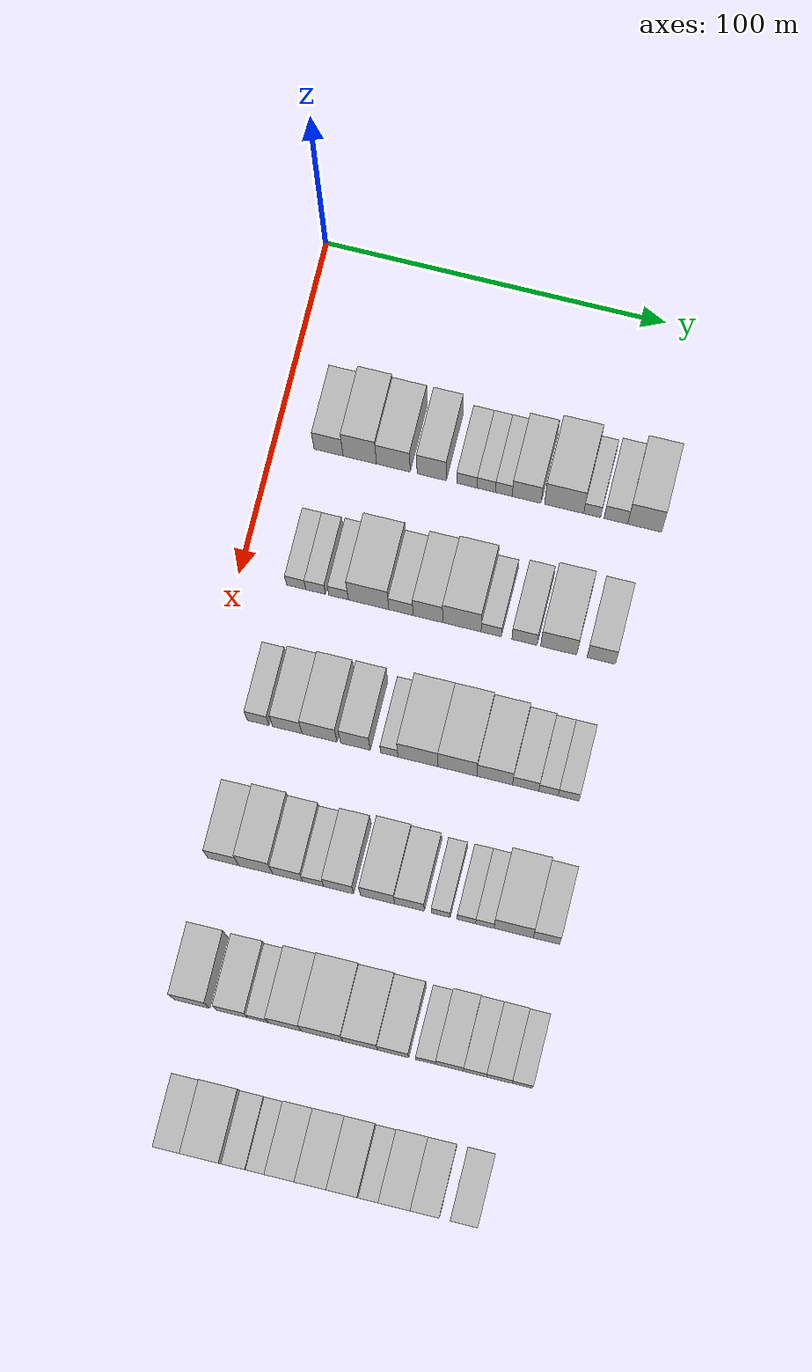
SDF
<sdf version="1.6">
 <world name="default">
  <model name="building_69">
   <static>1</static>
   <pose>50.0000 15.8395 0 0.000000 0.000000 0.000000</pose>
   <link name="link">
    <pose>0 0 9.00 0 0 0</pose>
    <collision name="collision"><geometry><box><size>20.0000 8.4667 18.0000</size></box></geometry></collision>
    <visual name="visual">
     <cast_shadows>0</cast_shadows>
     <geometry><box><size>20.0000 8.4667 18.0000</size></box></geometry>
     <material>
      <script>
       <uri>model://HANNAS_wall/materials/scripts</uri>
       <uri>model://HANNAS_wall/materials/textures</uri>
       <name>vrc/HANNAS_wall</name>
      </script>
     </material>
    </visual>
   </link>
  </model>
  <model name="building_70">
   <static>1</static>
   <pose>50.0000 24.9663 0 0.000000 0.000000 0.000000</pose>
   <link name="link">
    <pose>0 0 12.00 0 0 0</pose>
    <collision name="collision"><geometry><box><size>20.0000 9.7870 24.0000</size></box></geometry></collision>
    <visual name="visual">
     <cast_shadows>0</cast_shadows>
     <geometry><box><size>20.0000 9.7870 24.0000</size></box></geometry>
     <material>
      <script>
       <uri>model://HANNAS_wall/materials/scripts</uri>
       <uri>model://HANNAS_wall/materials/textures</uri>
       <name>vrc/HANNAS_wall</name>
      </script>
     </material>
    </visual>
   </link>
  </model>
  <model name="building_71">
   <static>1</static>
   <pose>50.0000 34.7830 0 0.000000 0.000000 0.000000</pose>
   <link name="link">
    <pose>0 0 10.50 0 0 0</pose>
    <collision name="collision"><geometry><box><size>20.0000 9.8464 21.0000</size></box></geometry></collision>
    <visual name="visual">
     <cast_shadows>0</cast_shadows>
     <geometry><box><size>20.0000 9.8464 21.0000</size></box></geometry>
     <material>
      <script>
       <uri>model://HANNAS_wall/materials/scripts</uri>
       <uri>model://HANNAS_wall/materials/textures</uri>
       <name>vrc/HANNAS_wall</name>
      </script>
     </material>
    </visual>
   </link>
  </model>
  <model name="building_72">
   <static>1</static>
   <pose>50.0000 45.9654 0 0.000000 0.000000 0.000000</pose>
   <link name="link">
    <pose>0 0 10.50 0 0 0</pose>
    <collision name="collision"><geometry><box><size>20.0000 8.5184 21.0000</size></box></geometry></collision>
    <visual name="visual">
     <cast_shadows>0</cast_shadows>
     <geometry><box><size>20.0000 8.5184 21.0000</size></box></geometry>
     <material>
      <script>
       <uri>model://HANNAS_wall/materials/scripts</uri>
       <uri>model://HANNAS_wall/materials/textures</uri>
       <name>vrc/HANNAS_wall</name>
      </script>
     </material>
    </visual>
   </link>
  </model>
  <model name="building_73">
   <static>1</static>
   <pose>50.0000 56.1927 0 0.000000 0.000000 0.000000</pose>
   <link name="link">
    <pose>0 0 6.00 0 0 0</pose>
    <collision name="collision"><geometry><box><size>20.0000 5.9361 12.0000</size></box></geometry></collision>
    <visual name="visual">
     <cast_shadows>0</cast_shadows>
     <geometry><box><size>20.0000 5.9361 12.0000</size></box></geometry>
     <material>
      <script>
       <uri>model://HANNAS_wall/materials/scripts</uri>
       <uri>model://HANNAS_wall/materials/textures</uri>
       <name>vrc/HANNAS_wall</name>
      </script>
     </material>
    </visual>
   </link>
  </model>
  <model name="building_74">
   <static>1</static>
   <pose>50.0000 61.8321 0 0.000000 0.000000 0.000000</pose>
   <link name="link">
    <pose>0 0 6.00 0 0 0</pose>
    <collision name="collision"><geometry><box><size>20.0000 5.3428 12.0000</size></box></geometry></collision>
    <visual name="visual">
     <cast_shadows>0</cast_shadows>
     <geometry><box><size>20.0000 5.3428 12.0000</size></box></geometry>
     <material>
      <script>
       <uri>model://HANNAS_wall/materials/scripts</uri>
       <uri>model://HANNAS_wall/materials/textures</uri>
       <name>vrc/HANNAS_wall</name>
      </script>
     </material>
    </visual>
   </link>
  </model>
  <model name="building_75">
   <static>1</static>
   <pose>50.0000 66.9464 0 0.000000 0.000000 0.000000</pose>
   <link name="link">
    <pose>0 0 6.00 0 0 0</pose>
    <collision name="collision"><geometry><box><size>20.0000 4.8857 12.0000</size></box></geometry></collision>
    <visual name="visual">
     <cast_shadows>0</cast_shadows>
     <geometry><box><size>20.0000 4.8857 12.0000</size></box></geometry>
     <material>
      <script>
       <uri>model://HANNAS_wall/materials/scripts</uri>
       <uri>model://HANNAS_wall/materials/textures</uri>
       <name>vrc/HANNAS_wall</name>
      </script>
     </material>
    </visual>
   </link>
  </model>
  <model name="building_76">
   <static>1</static>
   <pose>50.0000 73.5880 0 0.000000 0.000000 0.000000</pose>
   <link name="link">
    <pose>0 0 9.00 0 0 0</pose>
    <collision name="collision"><geometry><box><size>20.0000 8.3977 18.0000</size></box></geometry></collision>
    <visual name="visual">
     <cast_shadows>0</cast_shadows>
     <geometry><box><size>20.0000 8.3977 18.0000</size></box></geometry>
     <material>
      <script>
       <uri>model://HANNAS_wall/materials/scripts</uri>
       <uri>model://HANNAS_wall/materials/textures</uri>
       <name>vrc/HANNAS_wall</name>
      </script>
     </material>
    </visual>
   </link>
  </model>
  <model name="building_77">
   <static>1</static>
   <pose>50.0000 84.4808 0 0.000000 0.000000 0.000000</pose>
   <link name="link">
    <pose>0 0 12.00 0 0 0</pose>
    <collision name="collision"><geometry><box><size>20.0000 11.3879 24.0000</size></box></geometry></collision>
    <visual name="visual">
     <cast_shadows>0</cast_shadows>
     <geometry><box><size>20.0000 11.3879 24.0000</size></box></geometry>
     <material>
      <script>
       <uri>model://HANNAS_wall/materials/scripts</uri>
       <uri>model://HANNAS_wall/materials/textures</uri>
       <name>vrc/HANNAS_wall</name>
      </script>
     </material>
    </visual>
   </link>
  </model>
  <model name="building_78">
   <static>1</static>
   <pose>50.0000 92.6183 0 0.000000 0.000000 0.000000</pose>
   <link name="link">
    <pose>0 0 6.00 0 0 0</pose>
    <collision name="collision"><geometry><box><size>20.0000 4.8870 12.0000</size></box></geometry></collision>
    <visual name="visual">
     <cast_shadows>0</cast_shadows>
     <geometry><box><size>20.0000 4.8870 12.0000</size></box></geometry>
     <material>
      <script>
       <uri>model://HANNAS_wall/materials/scripts</uri>
       <uri>model://HANNAS_wall/materials/textures</uri>
       <name>vrc/HANNAS_wall</name>
      </script>
     </material>
    </visual>
   </link>
  </model>
  <model name="building_79">
   <static>1</static>
   <pose>50.0000 99.5023 0 0.000000 0.000000 0.000000</pose>
   <link name="link">
    <pose>0 0 7.50 0 0 0</pose>
    <collision name="collision"><geometry><box><size>20.0000 6.8812 15.0000</size></box></geometry></collision>
    <visual name="visual">
     <cast_shadows>0</cast_shadows>
     <geometry><box><size>20.0000 6.8812 15.0000</size></box></geometry>
     <material>
      <script>
       <uri>model://HANNAS_wall/materials/scripts</uri>
       <uri>model://HANNAS_wall/materials/textures</uri>
       <name>vrc/HANNAS_wall</name>
      </script>
     </material>
    </visual>
   </link>
  </model>
  <model name="building_80">
   <static>1</static>
   <pose>50.0000 107.8412 0 0.000000 0.000000 0.000000</pose>
   <link name="link">
    <pose>0 0 12.00 0 0 0</pose>
    <collision name="collision"><geometry><box><size>20.0000 9.7965 24.0000</size></box></geometry></collision>
    <visual name="visual">
     <cast_shadows>0</cast_shadows>
     <geometry><box><size>20.0000 9.7965 24.0000</size></box></geometry>
     <material>
      <script>
       <uri>model://HANNAS_wall/materials/scripts</uri>
       <uri>model://HANNAS_wall/materials/textures</uri>
       <name>vrc/HANNAS_wall</name>
      </script>
     </material>
    </visual>
   </link>
  </model>
  <model name="building_213">
   <static>1</static>
   <pose>90.0000 16.6044 0 0.000000 0.000000 0.000000</pose>
   <link name="link">
    <pose>0 0 6.00 0 0 0</pose>
    <collision name="collision"><geometry><box><size>20.0000 5.5731 12.0000</size></box></geometry></collision>
    <visual name="visual">
     <cast_shadows>0</cast_shadows>
     <geometry><box><size>20.0000 5.5731 12.0000</size></box></geometry>
     <material>
      <script>
       <uri>model://HANNAS_wall/materials/scripts</uri>
       <uri>model://HANNAS_wall/materials/textures</uri>
       <name>vrc/HANNAS_wall</name>
      </script>
     </material>
    </visual>
   </link>
  </model>
  <model name="building_214">
   <static>1</static>
   <pose>90.0000 22.2404 0 0.000000 0.000000 0.000000</pose>
   <link name="link">
    <pose>0 0 6.00 0 0 0</pose>
    <collision name="collision"><geometry><box><size>20.0000 5.6989 12.0000</size></box></geometry></collision>
    <visual name="visual">
     <cast_shadows>0</cast_shadows>
     <geometry><box><size>20.0000 5.6989 12.0000</size></box></geometry>
     <material>
      <script>
       <uri>model://HANNAS_wall/materials/scripts</uri>
       <uri>model://HANNAS_wall/materials/textures</uri>
       <name>vrc/HANNAS_wall</name>
      </script>
     </material>
    </visual>
   </link>
  </model>
  <model name="building_215">
   <static>1</static>
   <pose>90.0000 28.9152 0 0.000000 0.000000 0.000000</pose>
   <link name="link">
    <pose>0 0 6.00 0 0 0</pose>
    <collision name="collision"><geometry><box><size>20.0000 5.6506 12.0000</size></box></geometry></collision>
    <visual name="visual">
     <cast_shadows>0</cast_shadows>
     <geometry><box><size>20.0000 5.6506 12.0000</size></box></geometry>
     <material>
      <script>
       <uri>model://HANNAS_wall/materials/scripts</uri>
       <uri>model://HANNAS_wall/materials/textures</uri>
       <name>vrc/HANNAS_wall</name>
      </script>
     </material>
    </visual>
   </link>
  </model>
  <model name="building_216">
   <static>1</static>
   <pose>90.0000 37.5830 0 0.000000 0.000000 0.000000</pose>
   <link name="link">
    <pose>0 0 12.00 0 0 0</pose>
    <collision name="collision"><geometry><box><size>20.0000 11.6851 24.0000</size></box></geometry></collision>
    <visual name="visual">
     <cast_shadows>0</cast_shadows>
     <geometry><box><size>20.0000 11.6851 24.0000</size></box></geometry>
     <material>
      <script>
       <uri>model://HANNAS_wall/materials/scripts</uri>
       <uri>model://HANNAS_wall/materials/textures</uri>
       <name>vrc/HANNAS_wall</name>
      </script>
     </material>
    </visual>
   </link>
  </model>
  <model name="building_217">
   <static>1</static>
   <pose>90.0000 46.9471 0 0.000000 0.000000 0.000000</pose>
   <link name="link">
    <pose>0 0 7.50 0 0 0</pose>
    <collision name="collision"><geometry><box><size>20.0000 7.0431 15.0000</size></box></geometry></collision>
    <visual name="visual">
     <cast_shadows>0</cast_shadows>
     <geometry><box><size>20.0000 7.0431 15.0000</size></box></geometry>
     <material>
      <script>
       <uri>model://HANNAS_wall/materials/scripts</uri>
       <uri>model://HANNAS_wall/materials/textures</uri>
       <name>vrc/HANNAS_wall</name>
      </script>
     </material>
    </visual>
   </link>
  </model>
  <model name="building_218">
   <static>1</static>
   <pose>90.0000 54.7339 0 0.000000 0.000000 0.000000</pose>
   <link name="link">
    <pose>0 0 10.50 0 0 0</pose>
    <collision name="collision"><geometry><box><size>20.0000 8.5304 21.0000</size></box></geometry></collision>
    <visual name="visual">
     <cast_shadows>0</cast_shadows>
     <geometry><box><size>20.0000 8.5304 21.0000</size></box></geometry>
     <material>
      <script>
       <uri>model://HANNAS_wall/materials/scripts</uri>
       <uri>model://HANNAS_wall/materials/textures</uri>
       <name>vrc/HANNAS_wall</name>
      </script>
     </material>
    </visual>
   </link>
  </model>
  <model name="building_219">
   <static>1</static>
   <pose>90.0000 64.5402 0 0.000000 0.000000 0.000000</pose>
   <link name="link">
    <pose>0 0 12.00 0 0 0</pose>
    <collision name="collision"><geometry><box><size>20.0000 11.0822 24.0000</size></box></geometry></collision>
    <visual name="visual">
     <cast_shadows>0</cast_shadows>
     <geometry><box><size>20.0000 11.0822 24.0000</size></box></geometry>
     <material>
      <script>
       <uri>model://HANNAS_wall/materials/scripts</uri>
       <uri>model://HANNAS_wall/materials/textures</uri>
       <name>vrc/HANNAS_wall</name>
      </script>
     </material>
    </visual>
   </link>
  </model>
  <model name="building_220">
   <static>1</static>
   <pose>90.0000 73.0238 0 0.000000 0.000000 0.000000</pose>
   <link name="link">
    <pose>0 0 6.00 0 0 0</pose>
    <collision name="collision"><geometry><box><size>20.0000 5.8850 12.0000</size></box></geometry></collision>
    <visual name="visual">
     <cast_shadows>0</cast_shadows>
     <geometry><box><size>20.0000 5.8850 12.0000</size></box></geometry>
     <material>
      <script>
       <uri>model://HANNAS_wall/materials/scripts</uri>
       <uri>model://HANNAS_wall/materials/textures</uri>
       <name>vrc/HANNAS_wall</name>
      </script>
     </material>
    </visual>
   </link>
  </model>
  <model name="building_221">
   <static>1</static>
   <pose>90.0000 82.6121 0 0.000000 0.000000 0.000000</pose>
   <link name="link">
    <pose>0 0 7.50 0 0 0</pose>
    <collision name="collision"><geometry><box><size>20.0000 7.2917 15.0000</size></box></geometry></collision>
    <visual name="visual">
     <cast_shadows>0</cast_shadows>
     <geometry><box><size>20.0000 7.2917 15.0000</size></box></geometry>
     <material>
      <script>
       <uri>model://HANNAS_wall/materials/scripts</uri>
       <uri>model://HANNAS_wall/materials/textures</uri>
       <name>vrc/HANNAS_wall</name>
      </script>
     </material>
    </visual>
   </link>
  </model>
  <model name="building_222">
   <static>1</static>
   <pose>90.0000 92.4532 0 0.000000 0.000000 0.000000</pose>
   <link name="link">
    <pose>0 0 10.50 0 0 0</pose>
    <collision name="collision"><geometry><box><size>20.0000 10.3904 21.0000</size></box></geometry></collision>
    <visual name="visual">
     <cast_shadows>0</cast_shadows>
     <geometry><box><size>20.0000 10.3904 21.0000</size></box></geometry>
     <material>
      <script>
       <uri>model://HANNAS_wall/materials/scripts</uri>
       <uri>model://HANNAS_wall/materials/textures</uri>
       <name>vrc/HANNAS_wall</name>
      </script>
     </material>
    </visual>
   </link>
  </model>
  <model name="building_223">
   <static>1</static>
   <pose>90.0000 104.7139 0 0.000000 0.000000 0.000000</pose>
   <link name="link">
    <pose>0 0 9.00 0 0 0</pose>
    <collision name="collision"><geometry><box><size>20.0000 8.1309 18.0000</size></box></geometry></collision>
    <visual name="visual">
     <cast_shadows>0</cast_shadows>
     <geometry><box><size>20.0000 8.1309 18.0000</size></box></geometry>
     <material>
      <script>
       <uri>model://HANNAS_wall/materials/scripts</uri>
       <uri>model://HANNAS_wall/materials/textures</uri>
       <name>vrc/HANNAS_wall</name>
      </script>
     </material>
    </visual>
   </link>
  </model>
  <model name="building_351">
   <static>1</static>
   <pose>130.0000 15.9020 0 0.000000 0.000000 0.000000</pose>
   <link name="link">
    <pose>0 0 7.50 0 0 0</pose>
    <collision name="collision"><geometry><box><size>20.0000 6.3150 15.0000</size></box></geometry></collision>
    <visual name="visual">
     <cast_shadows>0</cast_shadows>
     <geometry><box><size>20.0000 6.3150 15.0000</size></box></geometry>
     <material>
      <script>
       <uri>model://HANNAS_wall/materials/scripts</uri>
       <uri>model://HANNAS_wall/materials/textures</uri>
       <name>vrc/HANNAS_wall</name>
      </script>
     </material>
    </visual>
   </link>
  </model>
  <model name="building_352">
   <static>1</static>
   <pose>130.0000 24.3003 0 0.000000 0.000000 0.000000</pose>
   <link name="link">
    <pose>0 0 9.00 0 0 0</pose>
    <collision name="collision"><geometry><box><size>20.0000 8.4815 18.0000</size></box></geometry></collision>
    <visual name="visual">
     <cast_shadows>0</cast_shadows>
     <geometry><box><size>20.0000 8.4815 18.0000</size></box></geometry>
     <material>
      <script>
       <uri>model://HANNAS_wall/materials/scripts</uri>
       <uri>model://HANNAS_wall/materials/textures</uri>
       <name>vrc/HANNAS_wall</name>
      </script>
     </material>
    </visual>
   </link>
  </model>
  <model name="building_353">
   <static>1</static>
   <pose>130.0000 33.5648 0 0.000000 0.000000 0.000000</pose>
   <link name="link">
    <pose>0 0 10.50 0 0 0</pose>
    <collision name="collision"><geometry><box><size>20.0000 10.0474 21.0000</size></box></geometry></collision>
    <visual name="visual">
     <cast_shadows>0</cast_shadows>
     <geometry><box><size>20.0000 10.0474 21.0000</size></box></geometry>
     <material>
      <script>
       <uri>model://HANNAS_wall/materials/scripts</uri>
       <uri>model://HANNAS_wall/materials/textures</uri>
       <name>vrc/HANNAS_wall</name>
      </script>
     </material>
    </visual>
   </link>
  </model>
  <model name="building_354">
   <static>1</static>
   <pose>130.0000 43.8529 0 0.000000 0.000000 0.000000</pose>
   <link name="link">
    <pose>0 0 10.50 0 0 0</pose>
    <collision name="collision"><geometry><box><size>20.0000 8.5289 21.0000</size></box></geometry></collision>
    <visual name="visual">
     <cast_shadows>0</cast_shadows>
     <geometry><box><size>20.0000 8.5289 21.0000</size></box></geometry>
     <material>
      <script>
       <uri>model://HANNAS_wall/materials/scripts</uri>
       <uri>model://HANNAS_wall/materials/textures</uri>
       <name>vrc/HANNAS_wall</name>
      </script>
     </material>
    </visual>
   </link>
  </model>
  <model name="building_355">
   <static>1</static>
   <pose>130.0000 53.5997 0 0.000000 0.000000 0.000000</pose>
   <link name="link">
    <pose>0 0 6.00 0 0 0</pose>
    <collision name="collision"><geometry><box><size>20.0000 4.9646 12.0000</size></box></geometry></collision>
    <visual name="visual">
     <cast_shadows>0</cast_shadows>
     <geometry><box><size>20.0000 4.9646 12.0000</size></box></geometry>
     <material>
      <script>
       <uri>model://HANNAS_wall/materials/scripts</uri>
       <uri>model://HANNAS_wall/materials/textures</uri>
       <name>vrc/HANNAS_wall</name>
      </script>
     </material>
    </visual>
   </link>
  </model>
  <model name="building_356">
   <static>1</static>
   <pose>130.0000 61.8136 0 0.000000 0.000000 0.000000</pose>
   <link name="link">
    <pose>0 0 12.00 0 0 0</pose>
    <collision name="collision"><geometry><box><size>20.0000 11.4633 24.0000</size></box></geometry></collision>
    <visual name="visual">
     <cast_shadows>0</cast_shadows>
     <geometry><box><size>20.0000 11.4633 24.0000</size></box></geometry>
     <material>
      <script>
       <uri>model://HANNAS_wall/materials/scripts</uri>
       <uri>model://HANNAS_wall/materials/textures</uri>
       <name>vrc/HANNAS_wall</name>
      </script>
     </material>
    </visual>
   </link>
  </model>
  <model name="building_357">
   <static>1</static>
   <pose>130.0000 73.1147 0 0.000000 0.000000 0.000000</pose>
   <link name="link">
    <pose>0 0 12.00 0 0 0</pose>
    <collision name="collision"><geometry><box><size>20.0000 11.1389 24.0000</size></box></geometry></collision>
    <visual name="visual">
     <cast_shadows>0</cast_shadows>
     <geometry><box><size>20.0000 11.1389 24.0000</size></box></geometry>
     <material>
      <script>
       <uri>model://HANNAS_wall/materials/scripts</uri>
       <uri>model://HANNAS_wall/materials/textures</uri>
       <name>vrc/HANNAS_wall</name>
      </script>
     </material>
    </visual>
   </link>
  </model>
  <model name="building_358">
   <static>1</static>
   <pose>130.0000 83.7774 0 0.000000 0.000000 0.000000</pose>
   <link name="link">
    <pose>0 0 10.50 0 0 0</pose>
    <collision name="collision"><geometry><box><size>20.0000 10.1863 21.0000</size></box></geometry></collision>
    <visual name="visual">
     <cast_shadows>0</cast_shadows>
     <geometry><box><size>20.0000 10.1863 21.0000</size></box></geometry>
     <material>
      <script>
       <uri>model://HANNAS_wall/materials/scripts</uri>
       <uri>model://HANNAS_wall/materials/textures</uri>
       <name>vrc/HANNAS_wall</name>
      </script>
     </material>
    </visual>
   </link>
  </model>
  <model name="building_359">
   <static>1</static>
   <pose>130.0000 92.6059 0 0.000000 0.000000 0.000000</pose>
   <link name="link">
    <pose>0 0 7.50 0 0 0</pose>
    <collision name="collision"><geometry><box><size>20.0000 7.4708 15.0000</size></box></geometry></collision>
    <visual name="visual">
     <cast_shadows>0</cast_shadows>
     <geometry><box><size>20.0000 7.4708 15.0000</size></box></geometry>
     <material>
      <script>
       <uri>model://HANNAS_wall/materials/scripts</uri>
       <uri>model://HANNAS_wall/materials/textures</uri>
       <name>vrc/HANNAS_wall</name>
      </script>
     </material>
    </visual>
   </link>
  </model>
  <model name="building_360">
   <static>1</static>
   <pose>130.0000 99.1075 0 0.000000 0.000000 0.000000</pose>
   <link name="link">
    <pose>0 0 6.00 0 0 0</pose>
    <collision name="collision"><geometry><box><size>20.0000 5.5323 12.0000</size></box></geometry></collision>
    <visual name="visual">
     <cast_shadows>0</cast_shadows>
     <geometry><box><size>20.0000 5.5323 12.0000</size></box></geometry>
     <material>
      <script>
       <uri>model://HANNAS_wall/materials/scripts</uri>
       <uri>model://HANNAS_wall/materials/textures</uri>
       <name>vrc/HANNAS_wall</name>
      </script>
     </material>
    </visual>
   </link>
  </model>
  <model name="building_361">
   <static>1</static>
   <pose>130.0000 104.8387 0 0.000000 0.000000 0.000000</pose>
   <link name="link">
    <pose>0 0 6.00 0 0 0</pose>
    <collision name="collision"><geometry><box><size>20.0000 5.9301 12.0000</size></box></geometry></collision>
    <visual name="visual">
     <cast_shadows>0</cast_shadows>
     <geometry><box><size>20.0000 5.9301 12.0000</size></box></geometry>
     <material>
      <script>
       <uri>model://HANNAS_wall/materials/scripts</uri>
       <uri>model://HANNAS_wall/materials/textures</uri>
       <name>vrc/HANNAS_wall</name>
      </script>
     </material>
    </visual>
   </link>
  </model>
  <model name="building_488">
   <static>1</static>
   <pose>170.0000 16.2687 0 0.000000 0.000000 0.000000</pose>
   <link name="link">
    <pose>0 0 9.00 0 0 0</pose>
    <collision name="collision"><geometry><box><size>20.0000 8.9068 18.0000</size></box></geometry></collision>
    <visual name="visual">
     <cast_shadows>0</cast_shadows>
     <geometry><box><size>20.0000 8.9068 18.0000</size></box></geometry>
     <material>
      <script>
       <uri>model://HANNAS_wall/materials/scripts</uri>
       <uri>model://HANNAS_wall/materials/textures</uri>
       <name>vrc/HANNAS_wall</name>
      </script>
     </material>
    </visual>
   </link>
  </model>
  <model name="building_489">
   <static>1</static>
   <pose>170.0000 25.5356 0 0.000000 0.000000 0.000000</pose>
   <link name="link">
    <pose>0 0 12.00 0 0 0</pose>
    <collision name="collision"><geometry><box><size>20.0000 9.6269 24.0000</size></box></geometry></collision>
    <visual name="visual">
     <cast_shadows>0</cast_shadows>
     <geometry><box><size>20.0000 9.6269 24.0000</size></box></geometry>
     <material>
      <script>
       <uri>model://HANNAS_wall/materials/scripts</uri>
       <uri>model://HANNAS_wall/materials/textures</uri>
       <name>vrc/HANNAS_wall</name>
      </script>
     </material>
    </visual>
   </link>
  </model>
  <model name="building_490">
   <static>1</static>
   <pose>170.0000 34.6386 0 0.000000 0.000000 0.000000</pose>
   <link name="link">
    <pose>0 0 9.00 0 0 0</pose>
    <collision name="collision"><geometry><box><size>20.0000 8.5791 18.0000</size></box></geometry></collision>
    <visual name="visual">
     <cast_shadows>0</cast_shadows>
     <geometry><box><size>20.0000 8.5791 18.0000</size></box></geometry>
     <material>
      <script>
       <uri>model://HANNAS_wall/materials/scripts</uri>
       <uri>model://HANNAS_wall/materials/textures</uri>
       <name>vrc/HANNAS_wall</name>
      </script>
     </material>
    </visual>
   </link>
  </model>
  <model name="building_491">
   <static>1</static>
   <pose>170.0000 41.9142 0 0.000000 0.000000 0.000000</pose>
   <link name="link">
    <pose>0 0 6.00 0 0 0</pose>
    <collision name="collision"><geometry><box><size>20.0000 5.9721 12.0000</size></box></geometry></collision>
    <visual name="visual">
     <cast_shadows>0</cast_shadows>
     <geometry><box><size>20.0000 5.9721 12.0000</size></box></geometry>
     <material>
      <script>
       <uri>model://HANNAS_wall/materials/scripts</uri>
       <uri>model://HANNAS_wall/materials/textures</uri>
       <name>vrc/HANNAS_wall</name>
      </script>
     </material>
    </visual>
   </link>
  </model>
  <model name="building_492">
   <static>1</static>
   <pose>170.0000 49.1583 0 0.000000 0.000000 0.000000</pose>
   <link name="link">
    <pose>0 0 9.00 0 0 0</pose>
    <collision name="collision"><geometry><box><size>20.0000 8.5162 18.0000</size></box></geometry></collision>
    <visual name="visual">
     <cast_shadows>0</cast_shadows>
     <geometry><box><size>20.0000 8.5162 18.0000</size></box></geometry>
     <material>
      <script>
       <uri>model://HANNAS_wall/materials/scripts</uri>
       <uri>model://HANNAS_wall/materials/textures</uri>
       <name>vrc/HANNAS_wall</name>
      </script>
     </material>
    </visual>
   </link>
  </model>
  <model name="building_493">
   <static>1</static>
   <pose>170.0000 60.2643 0 0.000000 0.000000 0.000000</pose>
   <link name="link">
    <pose>0 0 10.50 0 0 0</pose>
    <collision name="collision"><geometry><box><size>20.0000 9.6958 21.0000</size></box></geometry></collision>
    <visual name="visual">
     <cast_shadows>0</cast_shadows>
     <geometry><box><size>20.0000 9.6958 21.0000</size></box></geometry>
     <material>
      <script>
       <uri>model://HANNAS_wall/materials/scripts</uri>
       <uri>model://HANNAS_wall/materials/textures</uri>
       <name>vrc/HANNAS_wall</name>
      </script>
     </material>
    </visual>
   </link>
  </model>
  <model name="building_494">
   <static>1</static>
   <pose>170.0000 69.3107 0 0.000000 0.000000 0.000000</pose>
   <link name="link">
    <pose>0 0 9.00 0 0 0</pose>
    <collision name="collision"><geometry><box><size>20.0000 8.3970 18.0000</size></box></geometry></collision>
    <visual name="visual">
     <cast_shadows>0</cast_shadows>
     <geometry><box><size>20.0000 8.3970 18.0000</size></box></geometry>
     <material>
      <script>
       <uri>model://HANNAS_wall/materials/scripts</uri>
       <uri>model://HANNAS_wall/materials/textures</uri>
       <name>vrc/HANNAS_wall</name>
      </script>
     </material>
    </visual>
   </link>
  </model>
  <model name="building_495">
   <static>1</static>
   <pose>170.0000 78.1867 0 0.000000 0.000000 0.000000</pose>
   <link name="link">
    <pose>0 0 6.00 0 0 0</pose>
    <collision name="collision"><geometry><box><size>20.0000 5.3549 12.0000</size></box></geometry></collision>
    <visual name="visual">
     <cast_shadows>0</cast_shadows>
     <geometry><box><size>20.0000 5.3549 12.0000</size></box></geometry>
     <material>
      <script>
       <uri>model://HANNAS_wall/materials/scripts</uri>
       <uri>model://HANNAS_wall/materials/textures</uri>
       <name>vrc/HANNAS_wall</name>
      </script>
     </material>
    </visual>
   </link>
  </model>
  <model name="building_496">
   <static>1</static>
   <pose>170.0000 85.4827 0 0.000000 0.000000 0.000000</pose>
   <link name="link">
    <pose>0 0 6.00 0 0 0</pose>
    <collision name="collision"><geometry><box><size>20.0000 5.2371 12.0000</size></box></geometry></collision>
    <visual name="visual">
     <cast_shadows>0</cast_shadows>
     <geometry><box><size>20.0000 5.2371 12.0000</size></box></geometry>
     <material>
      <script>
       <uri>model://HANNAS_wall/materials/scripts</uri>
       <uri>model://HANNAS_wall/materials/textures</uri>
       <name>vrc/HANNAS_wall</name>
      </script>
     </material>
    </visual>
   </link>
  </model>
  <model name="building_497">
   <static>1</static>
   <pose>170.0000 90.6973 0 0.000000 0.000000 0.000000</pose>
   <link name="link">
    <pose>0 0 6.00 0 0 0</pose>
    <collision name="collision"><geometry><box><size>20.0000 5.1920 12.0000</size></box></geometry></collision>
    <visual name="visual">
     <cast_shadows>0</cast_shadows>
     <geometry><box><size>20.0000 5.1920 12.0000</size></box></geometry>
     <material>
      <script>
       <uri>model://HANNAS_wall/materials/scripts</uri>
       <uri>model://HANNAS_wall/materials/textures</uri>
       <name>vrc/HANNAS_wall</name>
      </script>
     </material>
    </visual>
   </link>
  </model>
  <model name="building_498">
   <static>1</static>
   <pose>170.0000 98.8206 0 0.000000 0.000000 0.000000</pose>
   <link name="link">
    <pose>0 0 12.00 0 0 0</pose>
    <collision name="collision"><geometry><box><size>20.0000 11.0545 24.0000</size></box></geometry></collision>
    <visual name="visual">
     <cast_shadows>0</cast_shadows>
     <geometry><box><size>20.0000 11.0545 24.0000</size></box></geometry>
     <material>
      <script>
       <uri>model://HANNAS_wall/materials/scripts</uri>
       <uri>model://HANNAS_wall/materials/textures</uri>
       <name>vrc/HANNAS_wall</name>
      </script>
     </material>
    </visual>
   </link>
  </model>
  <model name="building_499">
   <static>1</static>
   <pose>170.0000 108.0855 0 0.000000 0.000000 0.000000</pose>
   <link name="link">
    <pose>0 0 9.00 0 0 0</pose>
    <collision name="collision"><geometry><box><size>20.0000 7.4754 18.0000</size></box></geometry></collision>
    <visual name="visual">
     <cast_shadows>0</cast_shadows>
     <geometry><box><size>20.0000 7.4754 18.0000</size></box></geometry>
     <material>
      <script>
       <uri>model://HANNAS_wall/materials/scripts</uri>
       <uri>model://HANNAS_wall/materials/textures</uri>
       <name>vrc/HANNAS_wall</name>
      </script>
     </material>
    </visual>
   </link>
  </model>
  <model name="building_625">
   <static>1</static>
   <pose>210.0000 17.8326 0 0.000000 0.000000 0.000000</pose>
   <link name="link">
    <pose>0 0 10.50 0 0 0</pose>
    <collision name="collision"><geometry><box><size>20.0000 10.0207 21.0000</size></box></geometry></collision>
    <visual name="visual">
     <cast_shadows>0</cast_shadows>
     <geometry><box><size>20.0000 10.0207 21.0000</size></box></geometry>
     <material>
      <script>
       <uri>model://HANNAS_wall/materials/scripts</uri>
       <uri>model://HANNAS_wall/materials/textures</uri>
       <name>vrc/HANNAS_wall</name>
      </script>
     </material>
    </visual>
   </link>
  </model>
  <model name="building_626">
   <static>1</static>
   <pose>210.0000 29.2558 0 0.000000 0.000000 0.000000</pose>
   <link name="link">
    <pose>0 0 9.00 0 0 0</pose>
    <collision name="collision"><geometry><box><size>20.0000 8.8257 18.0000</size></box></geometry></collision>
    <visual name="visual">
     <cast_shadows>0</cast_shadows>
     <geometry><box><size>20.0000 8.8257 18.0000</size></box></geometry>
     <material>
      <script>
       <uri>model://HANNAS_wall/materials/scripts</uri>
       <uri>model://HANNAS_wall/materials/textures</uri>
       <name>vrc/HANNAS_wall</name>
      </script>
     </material>
    </visual>
   </link>
  </model>
  <model name="building_627">
   <static>1</static>
   <pose>210.0000 36.6345 0 0.000000 0.000000 0.000000</pose>
   <link name="link">
    <pose>0 0 6.00 0 0 0</pose>
    <collision name="collision"><geometry><box><size>20.0000 5.9318 12.0000</size></box></geometry></collision>
    <visual name="visual">
     <cast_shadows>0</cast_shadows>
     <geometry><box><size>20.0000 5.9318 12.0000</size></box></geometry>
     <material>
      <script>
       <uri>model://HANNAS_wall/materials/scripts</uri>
       <uri>model://HANNAS_wall/materials/textures</uri>
       <name>vrc/HANNAS_wall</name>
      </script>
     </material>
    </visual>
   </link>
  </model>
  <model name="building_628">
   <static>1</static>
   <pose>210.0000 44.1933 0 0.000000 0.000000 0.000000</pose>
   <link name="link">
    <pose>0 0 10.50 0 0 0</pose>
    <collision name="collision"><geometry><box><size>20.0000 9.1857 21.0000</size></box></geometry></collision>
    <visual name="visual">
     <cast_shadows>0</cast_shadows>
     <geometry><box><size>20.0000 9.1857 21.0000</size></box></geometry>
     <material>
      <script>
       <uri>model://HANNAS_wall/materials/scripts</uri>
       <uri>model://HANNAS_wall/materials/textures</uri>
       <name>vrc/HANNAS_wall</name>
      </script>
     </material>
    </visual>
   </link>
  </model>
  <model name="building_629">
   <static>1</static>
   <pose>210.0000 54.6392 0 0.000000 0.000000 0.000000</pose>
   <link name="link">
    <pose>0 0 12.00 0 0 0</pose>
    <collision name="collision"><geometry><box><size>20.0000 11.7062 24.0000</size></box></geometry></collision>
    <visual name="visual">
     <cast_shadows>0</cast_shadows>
     <geometry><box><size>20.0000 11.7062 24.0000</size></box></geometry>
     <material>
      <script>
       <uri>model://HANNAS_wall/materials/scripts</uri>
       <uri>model://HANNAS_wall/materials/textures</uri>
       <name>vrc/HANNAS_wall</name>
      </script>
     </material>
    </visual>
   </link>
  </model>
  <model name="building_630">
   <static>1</static>
   <pose>210.0000 65.4139 0 0.000000 0.000000 0.000000</pose>
   <link name="link">
    <pose>0 0 10.50 0 0 0</pose>
    <collision name="collision"><geometry><box><size>20.0000 9.8432 21.0000</size></box></geometry></collision>
    <visual name="visual">
     <cast_shadows>0</cast_shadows>
     <geometry><box><size>20.0000 9.8432 21.0000</size></box></geometry>
     <material>
      <script>
       <uri>model://HANNAS_wall/materials/scripts</uri>
       <uri>model://HANNAS_wall/materials/textures</uri>
       <name>vrc/HANNAS_wall</name>
      </script>
     </material>
    </visual>
   </link>
  </model>
  <model name="building_631">
   <static>1</static>
   <pose>210.0000 74.6863 0 0.000000 0.000000 0.000000</pose>
   <link name="link">
    <pose>0 0 9.00 0 0 0</pose>
    <collision name="collision"><geometry><box><size>20.0000 8.7017 18.0000</size></box></geometry></collision>
    <visual name="visual">
     <cast_shadows>0</cast_shadows>
     <geometry><box><size>20.0000 8.7017 18.0000</size></box></geometry>
     <material>
      <script>
       <uri>model://HANNAS_wall/materials/scripts</uri>
       <uri>model://HANNAS_wall/materials/textures</uri>
       <name>vrc/HANNAS_wall</name>
      </script>
     </material>
    </visual>
   </link>
  </model>
  <model name="building_632">
   <static>1</static>
   <pose>210.0000 83.8485 0 0.000000 0.000000 0.000000</pose>
   <link name="link">
    <pose>0 0 6.00 0 0 0</pose>
    <collision name="collision"><geometry><box><size>20.0000 5.6226 12.0000</size></box></geometry></collision>
    <visual name="visual">
     <cast_shadows>0</cast_shadows>
     <geometry><box><size>20.0000 5.6226 12.0000</size></box></geometry>
     <material>
      <script>
       <uri>model://HANNAS_wall/materials/scripts</uri>
       <uri>model://HANNAS_wall/materials/textures</uri>
       <name>vrc/HANNAS_wall</name>
      </script>
     </material>
    </visual>
   </link>
  </model>
  <model name="building_633">
   <static>1</static>
   <pose>210.0000 90.5527 0 0.000000 0.000000 0.000000</pose>
   <link name="link">
    <pose>0 0 9.00 0 0 0</pose>
    <collision name="collision"><geometry><box><size>20.0000 7.7860 18.0000</size></box></geometry></collision>
    <visual name="visual">
     <cast_shadows>0</cast_shadows>
     <geometry><box><size>20.0000 7.7860 18.0000</size></box></geometry>
     <material>
      <script>
       <uri>model://HANNAS_wall/materials/scripts</uri>
       <uri>model://HANNAS_wall/materials/textures</uri>
       <name>vrc/HANNAS_wall</name>
      </script>
     </material>
    </visual>
   </link>
  </model>
  <model name="building_634">
   <static>1</static>
   <pose>210.0000 97.6466 0 0.000000 0.000000 0.000000</pose>
   <link name="link">
    <pose>0 0 7.50 0 0 0</pose>
    <collision name="collision"><geometry><box><size>20.0000 6.4019 15.0000</size></box></geometry></collision>
    <visual name="visual">
     <cast_shadows>0</cast_shadows>
     <geometry><box><size>20.0000 6.4019 15.0000</size></box></geometry>
     <material>
      <script>
       <uri>model://HANNAS_wall/materials/scripts</uri>
       <uri>model://HANNAS_wall/materials/textures</uri>
       <name>vrc/HANNAS_wall</name>
      </script>
     </material>
    </visual>
   </link>
  </model>
  <model name="building_635">
   <static>1</static>
   <pose>210.0000 104.4300 0 0.000000 0.000000 0.000000</pose>
   <link name="link">
    <pose>0 0 7.50 0 0 0</pose>
    <collision name="collision"><geometry><box><size>20.0000 7.1649 15.0000</size></box></geometry></collision>
    <visual name="visual">
     <cast_shadows>0</cast_shadows>
     <geometry><box><size>20.0000 7.1649 15.0000</size></box></geometry>
     <material>
      <script>
       <uri>model://HANNAS_wall/materials/scripts</uri>
       <uri>model://HANNAS_wall/materials/textures</uri>
       <name>vrc/HANNAS_wall</name>
      </script>
     </material>
    </visual>
   </link>
  </model>
  <model name="building_636">
   <static>1</static>
   <pose>210.0000 110.9109 0 0.000000 0.000000 0.000000</pose>
   <link name="link">
    <pose>0 0 6.00 0 0 0</pose>
    <collision name="collision"><geometry><box><size>20.0000 5.7969 12.0000</size></box></geometry></collision>
    <visual name="visual">
     <cast_shadows>0</cast_shadows>
     <geometry><box><size>20.0000 5.7969 12.0000</size></box></geometry>
     <material>
      <script>
       <uri>model://HANNAS_wall/materials/scripts</uri>
       <uri>model://HANNAS_wall/materials/textures</uri>
       <name>vrc/HANNAS_wall</name>
      </script>
     </material>
    </visual>
   </link>
  </model>
  <model name="building_761">
   <static>1</static>
   <pose>250.0000 22.8172 0 0.000000 0.000000 0.000000</pose>
   <link name="link">
    <pose>0 0 9.00 0 0 0</pose>
    <collision name="collision"><geometry><box><size>20.0000 7.9838 18.0000</size></box></geometry></collision>
    <visual name="visual">
     <cast_shadows>0</cast_shadows>
     <geometry><box><size>20.0000 7.9838 18.0000</size></box></geometry>
     <material>
      <script>
       <uri>model://HANNAS_wall/materials/scripts</uri>
       <uri>model://HANNAS_wall/materials/textures</uri>
       <name>vrc/HANNAS_wall</name>
      </script>
     </material>
    </visual>
   </link>
  </model>
  <model name="building_762">
   <static>1</static>
   <pose>250.0000 32.1574 0 0.000000 0.000000 0.000000</pose>
   <link name="link">
    <pose>0 0 12.00 0 0 0</pose>
    <collision name="collision"><geometry><box><size>20.0000 10.6968 24.0000</size></box></geometry></collision>
    <visual name="visual">
     <cast_shadows>0</cast_shadows>
     <geometry><box><size>20.0000 10.6968 24.0000</size></box></geometry>
     <material>
      <script>
       <uri>model://HANNAS_wall/materials/scripts</uri>
       <uri>model://HANNAS_wall/materials/textures</uri>
       <name>vrc/HANNAS_wall</name>
      </script>
     </material>
    </visual>
   </link>
  </model>
  <model name="building_763">
   <static>1</static>
   <pose>250.0000 40.7805 0 0.000000 0.000000 0.000000</pose>
   <link name="link">
    <pose>0 0 7.50 0 0 0</pose>
    <collision name="collision"><geometry><box><size>20.0000 6.5494 15.0000</size></box></geometry></collision>
    <visual name="visual">
     <cast_shadows>0</cast_shadows>
     <geometry><box><size>20.0000 6.5494 15.0000</size></box></geometry>
     <material>
      <script>
       <uri>model://HANNAS_wall/materials/scripts</uri>
       <uri>model://HANNAS_wall/materials/textures</uri>
       <name>vrc/HANNAS_wall</name>
      </script>
     </material>
    </visual>
   </link>
  </model>
  <model name="building_764">
   <static>1</static>
   <pose>250.0000 46.7896 0 0.000000 0.000000 0.000000</pose>
   <link name="link">
    <pose>0 0 6.00 0 0 0</pose>
    <collision name="collision"><geometry><box><size>20.0000 5.4687 12.0000</size></box></geometry></collision>
    <visual name="visual">
     <cast_shadows>0</cast_shadows>
     <geometry><box><size>20.0000 5.4687 12.0000</size></box></geometry>
     <material>
      <script>
       <uri>model://HANNAS_wall/materials/scripts</uri>
       <uri>model://HANNAS_wall/materials/textures</uri>
       <name>vrc/HANNAS_wall</name>
      </script>
     </material>
    </visual>
   </link>
  </model>
  <model name="building_765">
   <static>1</static>
   <pose>250.0000 53.7234 0 0.000000 0.000000 0.000000</pose>
   <link name="link">
    <pose>0 0 9.00 0 0 0</pose>
    <collision name="collision"><geometry><box><size>20.0000 8.3990 18.0000</size></box></geometry></collision>
    <visual name="visual">
     <cast_shadows>0</cast_shadows>
     <geometry><box><size>20.0000 8.3990 18.0000</size></box></geometry>
     <material>
      <script>
       <uri>model://HANNAS_wall/materials/scripts</uri>
       <uri>model://HANNAS_wall/materials/textures</uri>
       <name>vrc/HANNAS_wall</name>
      </script>
     </material>
    </visual>
   </link>
  </model>
  <model name="building_766">
   <static>1</static>
   <pose>250.0000 62.2840 0 0.000000 0.000000 0.000000</pose>
   <link name="link">
    <pose>0 0 10.50 0 0 0</pose>
    <collision name="collision"><geometry><box><size>20.0000 8.7222 21.0000</size></box></geometry></collision>
    <visual name="visual">
     <cast_shadows>0</cast_shadows>
     <geometry><box><size>20.0000 8.7222 21.0000</size></box></geometry>
     <material>
      <script>
       <uri>model://HANNAS_wall/materials/scripts</uri>
       <uri>model://HANNAS_wall/materials/textures</uri>
       <name>vrc/HANNAS_wall</name>
      </script>
     </material>
    </visual>
   </link>
  </model>
  <model name="building_767">
   <static>1</static>
   <pose>250.0000 70.8795 0 0.000000 0.000000 0.000000</pose>
   <link name="link">
    <pose>0 0 10.50 0 0 0</pose>
    <collision name="collision"><geometry><box><size>20.0000 8.4686 21.0000</size></box></geometry></collision>
    <visual name="visual">
     <cast_shadows>0</cast_shadows>
     <geometry><box><size>20.0000 8.4686 21.0000</size></box></geometry>
     <material>
      <script>
       <uri>model://HANNAS_wall/materials/scripts</uri>
       <uri>model://HANNAS_wall/materials/textures</uri>
       <name>vrc/HANNAS_wall</name>
      </script>
     </material>
    </visual>
   </link>
  </model>
  <model name="building_768">
   <static>1</static>
   <pose>250.0000 77.9402 0 0.000000 0.000000 0.000000</pose>
   <link name="link">
    <pose>0 0 6.00 0 0 0</pose>
    <collision name="collision"><geometry><box><size>20.0000 5.6529 12.0000</size></box></geometry></collision>
    <visual name="visual">
     <cast_shadows>0</cast_shadows>
     <geometry><box><size>20.0000 5.6529 12.0000</size></box></geometry>
     <material>
      <script>
       <uri>model://HANNAS_wall/materials/scripts</uri>
       <uri>model://HANNAS_wall/materials/textures</uri>
       <name>vrc/HANNAS_wall</name>
      </script>
     </material>
    </visual>
   </link>
  </model>
  <model name="building_769">
   <static>1</static>
   <pose>250.0000 85.1513 0 0.000000 0.000000 0.000000</pose>
   <link name="link">
    <pose>0 0 9.00 0 0 0</pose>
    <collision name="collision"><geometry><box><size>20.0000 8.7692 18.0000</size></box></geometry></collision>
    <visual name="visual">
     <cast_shadows>0</cast_shadows>
     <geometry><box><size>20.0000 8.7692 18.0000</size></box></geometry>
     <material>
      <script>
       <uri>model://HANNAS_wall/materials/scripts</uri>
       <uri>model://HANNAS_wall/materials/textures</uri>
       <name>vrc/HANNAS_wall</name>
      </script>
     </material>
    </visual>
   </link>
  </model>
  <model name="building_770">
   <static>1</static>
   <pose>250.0000 93.5263 0 0.000000 0.000000 0.000000</pose>
   <link name="link">
    <pose>0 0 9.00 0 0 0</pose>
    <collision name="collision"><geometry><box><size>20.0000 7.9808 18.0000</size></box></geometry></collision>
    <visual name="visual">
     <cast_shadows>0</cast_shadows>
     <geometry><box><size>20.0000 7.9808 18.0000</size></box></geometry>
     <material>
      <script>
       <uri>model://HANNAS_wall/materials/scripts</uri>
       <uri>model://HANNAS_wall/materials/textures</uri>
       <name>vrc/HANNAS_wall</name>
      </script>
     </material>
    </visual>
   </link>
  </model>
  <model name="building_771">
   <static>1</static>
   <pose>250.0000 104.2905 0 0.000000 0.000000 0.000000</pose>
   <link name="link">
    <pose>0 0 9.00 0 0 0</pose>
    <collision name="collision"><geometry><box><size>20.0000 7.5476 18.0000</size></box></geometry></collision>
    <visual name="visual">
     <cast_shadows>0</cast_shadows>
     <geometry><box><size>20.0000 7.5476 18.0000</size></box></geometry>
     <material>
      <script>
       <uri>model://HANNAS_wall/materials/scripts</uri>
       <uri>model://HANNAS_wall/materials/textures</uri>
       <name>vrc/HANNAS_wall</name>
      </script>
     </material>
    </visual>
   </link>
  </model>
 </world>
</sdf>
